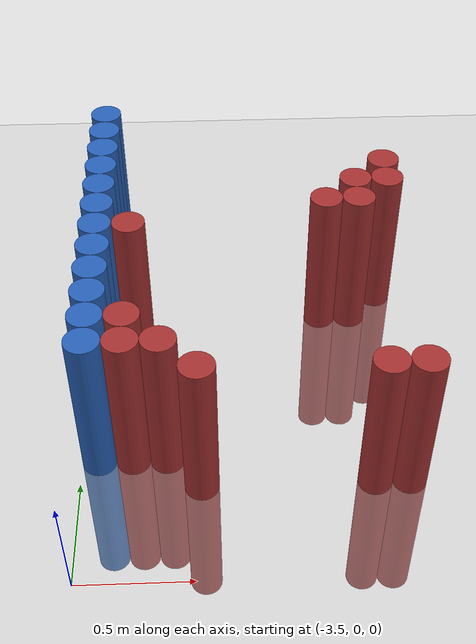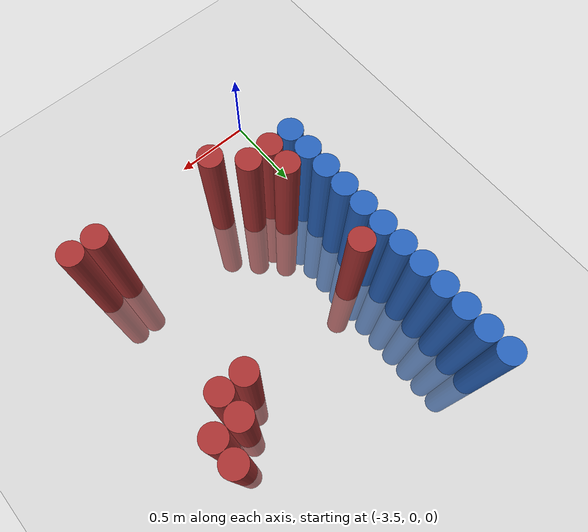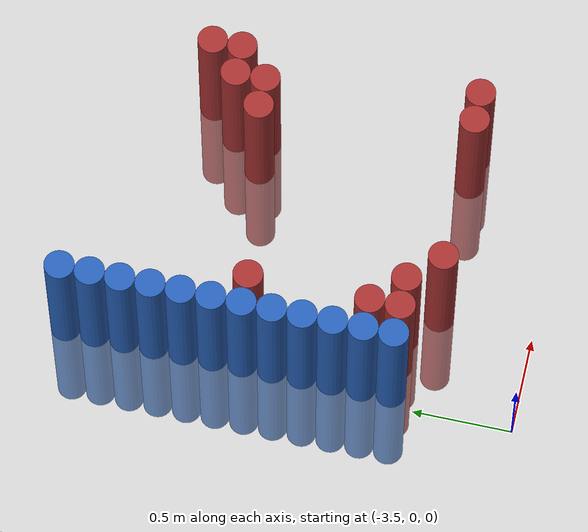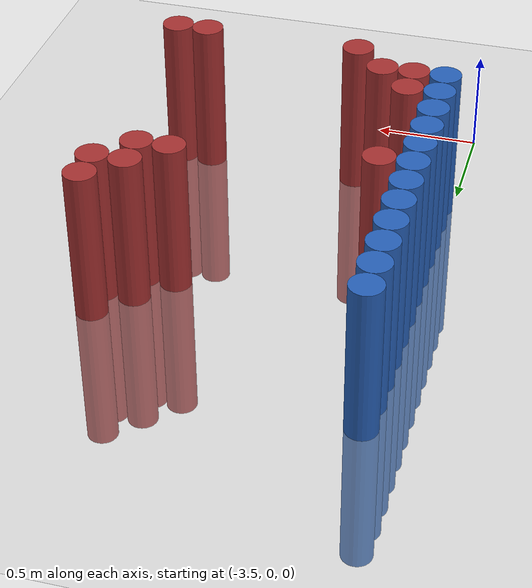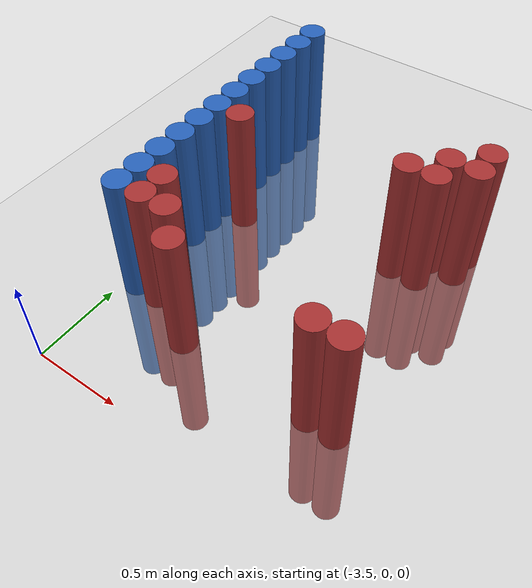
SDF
<sdf version="1.6">
 <world name="default">
  <model name="ground_plane">
   <static>1</static>
   <link name="link">
    <collision name="collision">
     <geometry><plane><normal>0 0 1</normal><size>100 100</size></plane></geometry>
     <surface><friction><ode><mu>100</mu><mu2>50</mu2></ode></friction></surface>
    </collision>
    <visual name="visual">
     <cast_shadows>0</cast_shadows>
     <geometry><plane><normal>0 0 1</normal><size>100 100</size></plane></geometry>
     <material>
      <script><uri>file://media/materials/scripts/gazebo.material</uri><name>Gazebo/Grey</name></script>
     </material>
    </visual>
   </link>
  </model>
  <model name="unit_cylinder_123">
   <static>1</static>
   <pose>-3.425000 0.625000 0.000000 0.000000 0.000000 0.000000</pose>
   <link name="link">
    <inertial>
     <mass>1</mass>
     <inertia><ixx>0.145833</ixx><ixy>0</ixy><ixz>0</ixz><iyy>0.145833</iyy><iyz>0</iyz><izz>0.125</izz></inertia>
    </inertial>
    <collision name="collision">
     <geometry><cylinder><radius>0.075000</radius><length>1.5</length></cylinder></geometry>
    </collision>
    <visual name="visual">
     <geometry><cylinder><radius>0.075000</radius><length>1.5</length></cylinder></geometry>
     <material>
      <ambient>0.152000 0.379000 0.720000 1</ambient>
      <diffuse>0.152000 0.379000 0.720000 1</diffuse>
     </material>
     <material>
      <script><name>Gazebo/Grey</name><uri>file://media/materials/scripts/gazebo.material</uri></script>
     </material>
    </visual>
   </link>
  </model>
  <model name="unit_cylinder_125">
   <static>1</static>
   <pose>-3.425000 0.775000 0.000000 0.000000 0.000000 0.000000</pose>
   <link name="link">
    <inertial>
     <mass>1</mass>
     <inertia><ixx>0.145833</ixx><ixy>0</ixy><ixz>0</ixz><iyy>0.145833</iyy><iyz>0</iyz><izz>0.125</izz></inertia>
    </inertial>
    <collision name="collision">
     <geometry><cylinder><radius>0.075000</radius><length>1.5</length></cylinder></geometry>
    </collision>
    <visual name="visual">
     <geometry><cylinder><radius>0.075000</radius><length>1.5</length></cylinder></geometry>
     <material>
      <ambient>0.152000 0.379000 0.720000 1</ambient>
      <diffuse>0.152000 0.379000 0.720000 1</diffuse>
     </material>
     <material>
      <script><name>Gazebo/Grey</name><uri>file://media/materials/scripts/gazebo.material</uri></script>
     </material>
    </visual>
   </link>
  </model>
  <model name="unit_cylinder_127">
   <static>1</static>
   <pose>-3.425000 0.925000 0.000000 0.000000 0.000000 0.000000</pose>
   <link name="link">
    <inertial>
     <mass>1</mass>
     <inertia><ixx>0.145833</ixx><ixy>0</ixy><ixz>0</ixz><iyy>0.145833</iyy><iyz>0</iyz><izz>0.125</izz></inertia>
    </inertial>
    <collision name="collision">
     <geometry><cylinder><radius>0.075000</radius><length>1.5</length></cylinder></geometry>
    </collision>
    <visual name="visual">
     <geometry><cylinder><radius>0.075000</radius><length>1.5</length></cylinder></geometry>
     <material>
      <ambient>0.152000 0.379000 0.720000 1</ambient>
      <diffuse>0.152000 0.379000 0.720000 1</diffuse>
     </material>
     <material>
      <script><name>Gazebo/Grey</name><uri>file://media/materials/scripts/gazebo.material</uri></script>
     </material>
    </visual>
   </link>
  </model>
  <model name="unit_cylinder_129">
   <static>1</static>
   <pose>-3.425000 1.075000 0.000000 0.000000 0.000000 0.000000</pose>
   <link name="link">
    <inertial>
     <mass>1</mass>
     <inertia><ixx>0.145833</ixx><ixy>0</ixy><ixz>0</ixz><iyy>0.145833</iyy><iyz>0</iyz><izz>0.125</izz></inertia>
    </inertial>
    <collision name="collision">
     <geometry><cylinder><radius>0.075000</radius><length>1.5</length></cylinder></geometry>
    </collision>
    <visual name="visual">
     <geometry><cylinder><radius>0.075000</radius><length>1.5</length></cylinder></geometry>
     <material>
      <ambient>0.152000 0.379000 0.720000 1</ambient>
      <diffuse>0.152000 0.379000 0.720000 1</diffuse>
     </material>
     <material>
      <script><name>Gazebo/Grey</name><uri>file://media/materials/scripts/gazebo.material</uri></script>
     </material>
    </visual>
   </link>
  </model>
  <model name="unit_cylinder_131">
   <static>1</static>
   <pose>-3.425000 1.225000 0.000000 0.000000 0.000000 0.000000</pose>
   <link name="link">
    <inertial>
     <mass>1</mass>
     <inertia><ixx>0.145833</ixx><ixy>0</ixy><ixz>0</ixz><iyy>0.145833</iyy><iyz>0</iyz><izz>0.125</izz></inertia>
    </inertial>
    <collision name="collision">
     <geometry><cylinder><radius>0.075000</radius><length>1.5</length></cylinder></geometry>
    </collision>
    <visual name="visual">
     <geometry><cylinder><radius>0.075000</radius><length>1.5</length></cylinder></geometry>
     <material>
      <ambient>0.152000 0.379000 0.720000 1</ambient>
      <diffuse>0.152000 0.379000 0.720000 1</diffuse>
     </material>
     <material>
      <script><name>Gazebo/Grey</name><uri>file://media/materials/scripts/gazebo.material</uri></script>
     </material>
    </visual>
   </link>
  </model>
  <model name="unit_cylinder_133">
   <static>1</static>
   <pose>-3.425000 1.375000 0.000000 0.000000 0.000000 0.000000</pose>
   <link name="link">
    <inertial>
     <mass>1</mass>
     <inertia><ixx>0.145833</ixx><ixy>0</ixy><ixz>0</ixz><iyy>0.145833</iyy><iyz>0</iyz><izz>0.125</izz></inertia>
    </inertial>
    <collision name="collision">
     <geometry><cylinder><radius>0.075000</radius><length>1.5</length></cylinder></geometry>
    </collision>
    <visual name="visual">
     <geometry><cylinder><radius>0.075000</radius><length>1.5</length></cylinder></geometry>
     <material>
      <ambient>0.152000 0.379000 0.720000 1</ambient>
      <diffuse>0.152000 0.379000 0.720000 1</diffuse>
     </material>
     <material>
      <script><name>Gazebo/Grey</name><uri>file://media/materials/scripts/gazebo.material</uri></script>
     </material>
    </visual>
   </link>
  </model>
  <model name="unit_cylinder_135">
   <static>1</static>
   <pose>-3.425000 1.525000 0.000000 0.000000 0.000000 0.000000</pose>
   <link name="link">
    <inertial>
     <mass>1</mass>
     <inertia><ixx>0.145833</ixx><ixy>0</ixy><ixz>0</ixz><iyy>0.145833</iyy><iyz>0</iyz><izz>0.125</izz></inertia>
    </inertial>
    <collision name="collision">
     <geometry><cylinder><radius>0.075000</radius><length>1.5</length></cylinder></geometry>
    </collision>
    <visual name="visual">
     <geometry><cylinder><radius>0.075000</radius><length>1.5</length></cylinder></geometry>
     <material>
      <ambient>0.152000 0.379000 0.720000 1</ambient>
      <diffuse>0.152000 0.379000 0.720000 1</diffuse>
     </material>
     <material>
      <script><name>Gazebo/Grey</name><uri>file://media/materials/scripts/gazebo.material</uri></script>
     </material>
    </visual>
   </link>
  </model>
  <model name="unit_cylinder_137">
   <static>1</static>
   <pose>-3.425000 1.675000 0.000000 0.000000 0.000000 0.000000</pose>
   <link name="link">
    <inertial>
     <mass>1</mass>
     <inertia><ixx>0.145833</ixx><ixy>0</ixy><ixz>0</ixz><iyy>0.145833</iyy><iyz>0</iyz><izz>0.125</izz></inertia>
    </inertial>
    <collision name="collision">
     <geometry><cylinder><radius>0.075000</radius><length>1.5</length></cylinder></geometry>
    </collision>
    <visual name="visual">
     <geometry><cylinder><radius>0.075000</radius><length>1.5</length></cylinder></geometry>
     <material>
      <ambient>0.152000 0.379000 0.720000 1</ambient>
      <diffuse>0.152000 0.379000 0.720000 1</diffuse>
     </material>
     <material>
      <script><name>Gazebo/Grey</name><uri>file://media/materials/scripts/gazebo.material</uri></script>
     </material>
    </visual>
   </link>
  </model>
  <model name="unit_cylinder_139">
   <static>1</static>
   <pose>-3.425000 1.825000 0.000000 0.000000 0.000000 0.000000</pose>
   <link name="link">
    <inertial>
     <mass>1</mass>
     <inertia><ixx>0.145833</ixx><ixy>0</ixy><ixz>0</ixz><iyy>0.145833</iyy><iyz>0</iyz><izz>0.125</izz></inertia>
    </inertial>
    <collision name="collision">
     <geometry><cylinder><radius>0.075000</radius><length>1.5</length></cylinder></geometry>
    </collision>
    <visual name="visual">
     <geometry><cylinder><radius>0.075000</radius><length>1.5</length></cylinder></geometry>
     <material>
      <ambient>0.152000 0.379000 0.720000 1</ambient>
      <diffuse>0.152000 0.379000 0.720000 1</diffuse>
     </material>
     <material>
      <script><name>Gazebo/Grey</name><uri>file://media/materials/scripts/gazebo.material</uri></script>
     </material>
    </visual>
   </link>
  </model>
  <model name="unit_cylinder_141">
   <static>1</static>
   <pose>-3.425000 1.975000 0.000000 0.000000 0.000000 0.000000</pose>
   <link name="link">
    <inertial>
     <mass>1</mass>
     <inertia><ixx>0.145833</ixx><ixy>0</ixy><ixz>0</ixz><iyy>0.145833</iyy><iyz>0</iyz><izz>0.125</izz></inertia>
    </inertial>
    <collision name="collision">
     <geometry><cylinder><radius>0.075000</radius><length>1.5</length></cylinder></geometry>
    </collision>
    <visual name="visual">
     <geometry><cylinder><radius>0.075000</radius><length>1.5</length></cylinder></geometry>
     <material>
      <ambient>0.152000 0.379000 0.720000 1</ambient>
      <diffuse>0.152000 0.379000 0.720000 1</diffuse>
     </material>
     <material>
      <script><name>Gazebo/Grey</name><uri>file://media/materials/scripts/gazebo.material</uri></script>
     </material>
    </visual>
   </link>
  </model>
  <model name="unit_cylinder_143">
   <static>1</static>
   <pose>-3.425000 2.125000 0.000000 0.000000 0.000000 0.000000</pose>
   <link name="link">
    <inertial>
     <mass>1</mass>
     <inertia><ixx>0.145833</ixx><ixy>0</ixy><ixz>0</ixz><iyy>0.145833</iyy><iyz>0</iyz><izz>0.125</izz></inertia>
    </inertial>
    <collision name="collision">
     <geometry><cylinder><radius>0.075000</radius><length>1.5</length></cylinder></geometry>
    </collision>
    <visual name="visual">
     <geometry><cylinder><radius>0.075000</radius><length>1.5</length></cylinder></geometry>
     <material>
      <ambient>0.152000 0.379000 0.720000 1</ambient>
      <diffuse>0.152000 0.379000 0.720000 1</diffuse>
     </material>
     <material>
      <script><name>Gazebo/Grey</name><uri>file://media/materials/scripts/gazebo.material</uri></script>
     </material>
    </visual>
   </link>
  </model>
  <model name="unit_cylinder_145">
   <static>1</static>
   <pose>-3.425000 2.275000 0.000000 0.000000 0.000000 0.000000</pose>
   <link name="link">
    <inertial>
     <mass>1</mass>
     <inertia><ixx>0.145833</ixx><ixy>0</ixy><ixz>0</ixz><iyy>0.145833</iyy><iyz>0</iyz><izz>0.125</izz></inertia>
    </inertial>
    <collision name="collision">
     <geometry><cylinder><radius>0.075000</radius><length>1.5</length></cylinder></geometry>
    </collision>
    <visual name="visual">
     <geometry><cylinder><radius>0.075000</radius><length>1.5</length></cylinder></geometry>
     <material>
      <ambient>0.152000 0.379000 0.720000 1</ambient>
      <diffuse>0.152000 0.379000 0.720000 1</diffuse>
     </material>
     <material>
      <script><name>Gazebo/Grey</name><uri>file://media/materials/scripts/gazebo.material</uri></script>
     </material>
    </visual>
   </link>
  </model>
  <model name="unit_cylinder_225">
   <static>1</static>
   <pose>-3.425000 0.625000 0.000000 0.000000 0.000000 0.000000</pose>
   <link name="link">
    <inertial>
     <mass>1</mass>
     <inertia><ixx>0.145833</ixx><ixy>0</ixy><ixz>0</ixz><iyy>0.145833</iyy><iyz>0</iyz><izz>0.125</izz></inertia>
    </inertial>
    <collision name="collision">
     <geometry><cylinder><radius>0.075000</radius><length>1.5</length></cylinder></geometry>
    </collision>
    <visual name="visual">
     <geometry><cylinder><radius>0.075000</radius><length>1.5</length></cylinder></geometry>
     <material>
      <ambient>0.152000 0.379000 0.720000 1</ambient>
      <diffuse>0.152000 0.379000 0.720000 1</diffuse>
     </material>
     <material>
      <script><name>Gazebo/Grey</name><uri>file://media/materials/scripts/gazebo.material</uri></script>
     </material>
    </visual>
   </link>
  </model>
  <model name="unit_cylinder_226">
   <static>1</static>
   <pose>-3.425000 0.775000 0.000000 0.000000 0.000000 0.000000</pose>
   <link name="link">
    <inertial>
     <mass>1</mass>
     <inertia><ixx>0.145833</ixx><ixy>0</ixy><ixz>0</ixz><iyy>0.145833</iyy><iyz>0</iyz><izz>0.125</izz></inertia>
    </inertial>
    <collision name="collision">
     <geometry><cylinder><radius>0.075000</radius><length>1.5</length></cylinder></geometry>
    </collision>
    <visual name="visual">
     <geometry><cylinder><radius>0.075000</radius><length>1.5</length></cylinder></geometry>
     <material>
      <ambient>0.152000 0.379000 0.720000 1</ambient>
      <diffuse>0.152000 0.379000 0.720000 1</diffuse>
     </material>
     <material>
      <script><name>Gazebo/Grey</name><uri>file://media/materials/scripts/gazebo.material</uri></script>
     </material>
    </visual>
   </link>
  </model>
  <model name="unit_cylinder_227">
   <static>1</static>
   <pose>-3.425000 0.925000 0.000000 0.000000 0.000000 0.000000</pose>
   <link name="link">
    <inertial>
     <mass>1</mass>
     <inertia><ixx>0.145833</ixx><ixy>0</ixy><ixz>0</ixz><iyy>0.145833</iyy><iyz>0</iyz><izz>0.125</izz></inertia>
    </inertial>
    <collision name="collision">
     <geometry><cylinder><radius>0.075000</radius><length>1.5</length></cylinder></geometry>
    </collision>
    <visual name="visual">
     <geometry><cylinder><radius>0.075000</radius><length>1.5</length></cylinder></geometry>
     <material>
      <ambient>0.152000 0.379000 0.720000 1</ambient>
      <diffuse>0.152000 0.379000 0.720000 1</diffuse>
     </material>
     <material>
      <script><name>Gazebo/Grey</name><uri>file://media/materials/scripts/gazebo.material</uri></script>
     </material>
    </visual>
   </link>
  </model>
  <model name="unit_cylinder_228">
   <static>1</static>
   <pose>-3.425000 1.075000 0.000000 0.000000 0.000000 0.000000</pose>
   <link name="link">
    <inertial>
     <mass>1</mass>
     <inertia><ixx>0.145833</ixx><ixy>0</ixy><ixz>0</ixz><iyy>0.145833</iyy><iyz>0</iyz><izz>0.125</izz></inertia>
    </inertial>
    <collision name="collision">
     <geometry><cylinder><radius>0.075000</radius><length>1.5</length></cylinder></geometry>
    </collision>
    <visual name="visual">
     <geometry><cylinder><radius>0.075000</radius><length>1.5</length></cylinder></geometry>
     <material>
      <ambient>0.152000 0.379000 0.720000 1</ambient>
      <diffuse>0.152000 0.379000 0.720000 1</diffuse>
     </material>
     <material>
      <script><name>Gazebo/Grey</name><uri>file://media/materials/scripts/gazebo.material</uri></script>
     </material>
    </visual>
   </link>
  </model>
  <model name="unit_cylinder_229">
   <static>1</static>
   <pose>-3.425000 1.225000 0.000000 0.000000 0.000000 0.000000</pose>
   <link name="link">
    <inertial>
     <mass>1</mass>
     <inertia><ixx>0.145833</ixx><ixy>0</ixy><ixz>0</ixz><iyy>0.145833</iyy><iyz>0</iyz><izz>0.125</izz></inertia>
    </inertial>
    <collision name="collision">
     <geometry><cylinder><radius>0.075000</radius><length>1.5</length></cylinder></geometry>
    </collision>
    <visual name="visual">
     <geometry><cylinder><radius>0.075000</radius><length>1.5</length></cylinder></geometry>
     <material>
      <ambient>0.152000 0.379000 0.720000 1</ambient>
      <diffuse>0.152000 0.379000 0.720000 1</diffuse>
     </material>
     <material>
      <script><name>Gazebo/Grey</name><uri>file://media/materials/scripts/gazebo.material</uri></script>
     </material>
    </visual>
   </link>
  </model>
  <model name="unit_cylinder_230">
   <static>1</static>
   <pose>-3.425000 1.375000 0.000000 0.000000 0.000000 0.000000</pose>
   <link name="link">
    <inertial>
     <mass>1</mass>
     <inertia><ixx>0.145833</ixx><ixy>0</ixy><ixz>0</ixz><iyy>0.145833</iyy><iyz>0</iyz><izz>0.125</izz></inertia>
    </inertial>
    <collision name="collision">
     <geometry><cylinder><radius>0.075000</radius><length>1.5</length></cylinder></geometry>
    </collision>
    <visual name="visual">
     <geometry><cylinder><radius>0.075000</radius><length>1.5</length></cylinder></geometry>
     <material>
      <ambient>0.152000 0.379000 0.720000 1</ambient>
      <diffuse>0.152000 0.379000 0.720000 1</diffuse>
     </material>
     <material>
      <script><name>Gazebo/Grey</name><uri>file://media/materials/scripts/gazebo.material</uri></script>
     </material>
    </visual>
   </link>
  </model>
  <model name="unit_cylinder_231">
   <static>1</static>
   <pose>-3.425000 1.525000 0.000000 0.000000 0.000000 0.000000</pose>
   <link name="link">
    <inertial>
     <mass>1</mass>
     <inertia><ixx>0.145833</ixx><ixy>0</ixy><ixz>0</ixz><iyy>0.145833</iyy><iyz>0</iyz><izz>0.125</izz></inertia>
    </inertial>
    <collision name="collision">
     <geometry><cylinder><radius>0.075000</radius><length>1.5</length></cylinder></geometry>
    </collision>
    <visual name="visual">
     <geometry><cylinder><radius>0.075000</radius><length>1.5</length></cylinder></geometry>
     <material>
      <ambient>0.152000 0.379000 0.720000 1</ambient>
      <diffuse>0.152000 0.379000 0.720000 1</diffuse>
     </material>
     <material>
      <script><name>Gazebo/Grey</name><uri>file://media/materials/scripts/gazebo.material</uri></script>
     </material>
    </visual>
   </link>
  </model>
  <model name="unit_cylinder_232">
   <static>1</static>
   <pose>-3.425000 1.675000 0.000000 0.000000 0.000000 0.000000</pose>
   <link name="link">
    <inertial>
     <mass>1</mass>
     <inertia><ixx>0.145833</ixx><ixy>0</ixy><ixz>0</ixz><iyy>0.145833</iyy><iyz>0</iyz><izz>0.125</izz></inertia>
    </inertial>
    <collision name="collision">
     <geometry><cylinder><radius>0.075000</radius><length>1.5</length></cylinder></geometry>
    </collision>
    <visual name="visual">
     <geometry><cylinder><radius>0.075000</radius><length>1.5</length></cylinder></geometry>
     <material>
      <ambient>0.152000 0.379000 0.720000 1</ambient>
      <diffuse>0.152000 0.379000 0.720000 1</diffuse>
     </material>
     <material>
      <script><name>Gazebo/Grey</name><uri>file://media/materials/scripts/gazebo.material</uri></script>
     </material>
    </visual>
   </link>
  </model>
  <model name="unit_cylinder_233">
   <static>1</static>
   <pose>-3.425000 1.825000 0.000000 0.000000 0.000000 0.000000</pose>
   <link name="link">
    <inertial>
     <mass>1</mass>
     <inertia><ixx>0.145833</ixx><ixy>0</ixy><ixz>0</ixz><iyy>0.145833</iyy><iyz>0</iyz><izz>0.125</izz></inertia>
    </inertial>
    <collision name="collision">
     <geometry><cylinder><radius>0.075000</radius><length>1.5</length></cylinder></geometry>
    </collision>
    <visual name="visual">
     <geometry><cylinder><radius>0.075000</radius><length>1.5</length></cylinder></geometry>
     <material>
      <ambient>0.152000 0.379000 0.720000 1</ambient>
      <diffuse>0.152000 0.379000 0.720000 1</diffuse>
     </material>
     <material>
      <script><name>Gazebo/Grey</name><uri>file://media/materials/scripts/gazebo.material</uri></script>
     </material>
    </visual>
   </link>
  </model>
  <model name="unit_cylinder_234">
   <static>1</static>
   <pose>-3.425000 1.975000 0.000000 0.000000 0.000000 0.000000</pose>
   <link name="link">
    <inertial>
     <mass>1</mass>
     <inertia><ixx>0.145833</ixx><ixy>0</ixy><ixz>0</ixz><iyy>0.145833</iyy><iyz>0</iyz><izz>0.125</izz></inertia>
    </inertial>
    <collision name="collision">
     <geometry><cylinder><radius>0.075000</radius><length>1.5</length></cylinder></geometry>
    </collision>
    <visual name="visual">
     <geometry><cylinder><radius>0.075000</radius><length>1.5</length></cylinder></geometry>
     <material>
      <ambient>0.152000 0.379000 0.720000 1</ambient>
      <diffuse>0.152000 0.379000 0.720000 1</diffuse>
     </material>
     <material>
      <script><name>Gazebo/Grey</name><uri>file://media/materials/scripts/gazebo.material</uri></script>
     </material>
    </visual>
   </link>
  </model>
  <model name="unit_cylinder_235">
   <static>1</static>
   <pose>-3.425000 2.125000 0.000000 0.000000 0.000000 0.000000</pose>
   <link name="link">
    <inertial>
     <mass>1</mass>
     <inertia><ixx>0.145833</ixx><ixy>0</ixy><ixz>0</ixz><iyy>0.145833</iyy><iyz>0</iyz><izz>0.125</izz></inertia>
    </inertial>
    <collision name="collision">
     <geometry><cylinder><radius>0.075000</radius><length>1.5</length></cylinder></geometry>
    </collision>
    <visual name="visual">
     <geometry><cylinder><radius>0.075000</radius><length>1.5</length></cylinder></geometry>
     <material>
      <ambient>0.152000 0.379000 0.720000 1</ambient>
      <diffuse>0.152000 0.379000 0.720000 1</diffuse>
     </material>
     <material>
      <script><name>Gazebo/Grey</name><uri>file://media/materials/scripts/gazebo.material</uri></script>
     </material>
    </visual>
   </link>
  </model>
  <model name="unit_cylinder_236">
   <static>1</static>
   <pose>-3.425000 2.275000 0.000000 0.000000 0.000000 0.000000</pose>
   <link name="link">
    <inertial>
     <mass>1</mass>
     <inertia><ixx>0.145833</ixx><ixy>0</ixy><ixz>0</ixz><iyy>0.145833</iyy><iyz>0</iyz><izz>0.125</izz></inertia>
    </inertial>
    <collision name="collision">
     <geometry><cylinder><radius>0.075000</radius><length>1.5</length></cylinder></geometry>
    </collision>
    <visual name="visual">
     <geometry><cylinder><radius>0.075000</radius><length>1.5</length></cylinder></geometry>
     <material>
      <ambient>0.152000 0.379000 0.720000 1</ambient>
      <diffuse>0.152000 0.379000 0.720000 1</diffuse>
     </material>
     <material>
      <script><name>Gazebo/Grey</name><uri>file://media/materials/scripts/gazebo.material</uri></script>
     </material>
    </visual>
   </link>
  </model>
  <model name="unit_cylinder_267">
   <static>1</static>
   <pose>-3.275000 0.625000 0.000000 0.000000 0.000000 0.000000</pose>
   <link name="link">
    <inertial>
     <mass>1</mass>
     <inertia><ixx>0.145833</ixx><ixy>0</ixy><ixz>0</ixz><iyy>0.145833</iyy><iyz>0</iyz><izz>0.125</izz></inertia>
    </inertial>
    <collision name="collision">
     <geometry><cylinder><radius>0.075000</radius><length>1.5</length></cylinder></geometry>
    </collision>
    <visual name="visual">
     <geometry><cylinder><radius>0.075000</radius><length>1.5</length></cylinder></geometry>
     <material>
      <ambient>0.648000 0.192000 0.192000 1</ambient>
      <diffuse>0.648000 0.192000 0.192000 1</diffuse>
     </material>
     <material>
      <script><name>Gazebo/Grey</name><uri>file://media/materials/scripts/gazebo.material</uri></script>
     </material>
    </visual>
   </link>
  </model>
  <model name="unit_cylinder_268">
   <static>1</static>
   <pose>-3.275000 0.775000 0.000000 0.000000 0.000000 0.000000</pose>
   <link name="link">
    <inertial>
     <mass>1</mass>
     <inertia><ixx>0.145833</ixx><ixy>0</ixy><ixz>0</ixz><iyy>0.145833</iyy><iyz>0</iyz><izz>0.125</izz></inertia>
    </inertial>
    <collision name="collision">
     <geometry><cylinder><radius>0.075000</radius><length>1.5</length></cylinder></geometry>
    </collision>
    <visual name="visual">
     <geometry><cylinder><radius>0.075000</radius><length>1.5</length></cylinder></geometry>
     <material>
      <ambient>0.648000 0.192000 0.192000 1</ambient>
      <diffuse>0.648000 0.192000 0.192000 1</diffuse>
     </material>
     <material>
      <script><name>Gazebo/Grey</name><uri>file://media/materials/scripts/gazebo.material</uri></script>
     </material>
    </visual>
   </link>
  </model>
  <model name="unit_cylinder_269">
   <static>1</static>
   <pose>-3.275000 1.375000 0.000000 0.000000 0.000000 0.000000</pose>
   <link name="link">
    <inertial>
     <mass>1</mass>
     <inertia><ixx>0.145833</ixx><ixy>0</ixy><ixz>0</ixz><iyy>0.145833</iyy><iyz>0</iyz><izz>0.125</izz></inertia>
    </inertial>
    <collision name="collision">
     <geometry><cylinder><radius>0.075000</radius><length>1.5</length></cylinder></geometry>
    </collision>
    <visual name="visual">
     <geometry><cylinder><radius>0.075000</radius><length>1.5</length></cylinder></geometry>
     <material>
      <ambient>0.648000 0.192000 0.192000 1</ambient>
      <diffuse>0.648000 0.192000 0.192000 1</diffuse>
     </material>
     <material>
      <script><name>Gazebo/Grey</name><uri>file://media/materials/scripts/gazebo.material</uri></script>
     </material>
    </visual>
   </link>
  </model>
  <model name="unit_cylinder_281">
   <static>1</static>
   <pose>-3.125000 0.625000 0.000000 0.000000 0.000000 0.000000</pose>
   <link name="link">
    <inertial>
     <mass>1</mass>
     <inertia><ixx>0.145833</ixx><ixy>0</ixy><ixz>0</ixz><iyy>0.145833</iyy><iyz>0</iyz><izz>0.125</izz></inertia>
    </inertial>
    <collision name="collision">
     <geometry><cylinder><radius>0.075000</radius><length>1.5</length></cylinder></geometry>
    </collision>
    <visual name="visual">
     <geometry><cylinder><radius>0.075000</radius><length>1.5</length></cylinder></geometry>
     <material>
      <ambient>0.648000 0.192000 0.192000 1</ambient>
      <diffuse>0.648000 0.192000 0.192000 1</diffuse>
     </material>
     <material>
      <script><name>Gazebo/Grey</name><uri>file://media/materials/scripts/gazebo.material</uri></script>
     </material>
    </visual>
   </link>
  </model>
  <model name="unit_cylinder_284">
   <static>1</static>
   <pose>-2.975000 0.475000 0.000000 0.000000 0.000000 0.000000</pose>
   <link name="link">
    <inertial>
     <mass>1</mass>
     <inertia><ixx>0.145833</ixx><ixy>0</ixy><ixz>0</ixz><iyy>0.145833</iyy><iyz>0</iyz><izz>0.125</izz></inertia>
    </inertial>
    <collision name="collision">
     <geometry><cylinder><radius>0.075000</radius><length>1.5</length></cylinder></geometry>
    </collision>
    <visual name="visual">
     <geometry><cylinder><radius>0.075000</radius><length>1.5</length></cylinder></geometry>
     <material>
      <ambient>0.648000 0.192000 0.192000 1</ambient>
      <diffuse>0.648000 0.192000 0.192000 1</diffuse>
     </material>
     <material>
      <script><name>Gazebo/Grey</name><uri>file://media/materials/scripts/gazebo.material</uri></script>
     </material>
    </visual>
   </link>
  </model>
  <model name="unit_cylinder_285">
   <static>1</static>
   <pose>-2.375000 1.525000 0.000000 0.000000 0.000000 0.000000</pose>
   <link name="link">
    <inertial>
     <mass>1</mass>
     <inertia><ixx>0.145833</ixx><ixy>0</ixy><ixz>0</ixz><iyy>0.145833</iyy><iyz>0</iyz><izz>0.125</izz></inertia>
    </inertial>
    <collision name="collision">
     <geometry><cylinder><radius>0.075000</radius><length>1.5</length></cylinder></geometry>
    </collision>
    <visual name="visual">
     <geometry><cylinder><radius>0.075000</radius><length>1.5</length></cylinder></geometry>
     <material>
      <ambient>0.648000 0.192000 0.192000 1</ambient>
      <diffuse>0.648000 0.192000 0.192000 1</diffuse>
     </material>
     <material>
      <script><name>Gazebo/Grey</name><uri>file://media/materials/scripts/gazebo.material</uri></script>
     </material>
    </visual>
   </link>
  </model>
  <model name="unit_cylinder_287">
   <static>1</static>
   <pose>-2.225000 0.475000 0.000000 0.000000 0.000000 0.000000</pose>
   <link name="link">
    <inertial>
     <mass>1</mass>
     <inertia><ixx>0.145833</ixx><ixy>0</ixy><ixz>0</ixz><iyy>0.145833</iyy><iyz>0</iyz><izz>0.125</izz></inertia>
    </inertial>
    <collision name="collision">
     <geometry><cylinder><radius>0.075000</radius><length>1.5</length></cylinder></geometry>
    </collision>
    <visual name="visual">
     <geometry><cylinder><radius>0.075000</radius><length>1.5</length></cylinder></geometry>
     <material>
      <ambient>0.648000 0.192000 0.192000 1</ambient>
      <diffuse>0.648000 0.192000 0.192000 1</diffuse>
     </material>
     <material>
      <script><name>Gazebo/Grey</name><uri>file://media/materials/scripts/gazebo.material</uri></script>
     </material>
    </visual>
   </link>
  </model>
  <model name="unit_cylinder_288">
   <static>1</static>
   <pose>-2.225000 1.525000 0.000000 0.000000 0.000000 0.000000</pose>
   <link name="link">
    <inertial>
     <mass>1</mass>
     <inertia><ixx>0.145833</ixx><ixy>0</ixy><ixz>0</ixz><iyy>0.145833</iyy><iyz>0</iyz><izz>0.125</izz></inertia>
    </inertial>
    <collision name="collision">
     <geometry><cylinder><radius>0.075000</radius><length>1.5</length></cylinder></geometry>
    </collision>
    <visual name="visual">
     <geometry><cylinder><radius>0.075000</radius><length>1.5</length></cylinder></geometry>
     <material>
      <ambient>0.648000 0.192000 0.192000 1</ambient>
      <diffuse>0.648000 0.192000 0.192000 1</diffuse>
     </material>
     <material>
      <script><name>Gazebo/Grey</name><uri>file://media/materials/scripts/gazebo.material</uri></script>
     </material>
    </visual>
   </link>
  </model>
  <model name="unit_cylinder_289">
   <static>1</static>
   <pose>-2.225000 1.675000 0.000000 0.000000 0.000000 0.000000</pose>
   <link name="link">
    <inertial>
     <mass>1</mass>
     <inertia><ixx>0.145833</ixx><ixy>0</ixy><ixz>0</ixz><iyy>0.145833</iyy><iyz>0</iyz><izz>0.125</izz></inertia>
    </inertial>
    <collision name="collision">
     <geometry><cylinder><radius>0.075000</radius><length>1.5</length></cylinder></geometry>
    </collision>
    <visual name="visual">
     <geometry><cylinder><radius>0.075000</radius><length>1.5</length></cylinder></geometry>
     <material>
      <ambient>0.648000 0.192000 0.192000 1</ambient>
      <diffuse>0.648000 0.192000 0.192000 1</diffuse>
     </material>
     <material>
      <script><name>Gazebo/Grey</name><uri>file://media/materials/scripts/gazebo.material</uri></script>
     </material>
    </visual>
   </link>
  </model>
  <model name="unit_cylinder_292">
   <static>1</static>
   <pose>-2.075000 0.475000 0.000000 0.000000 0.000000 0.000000</pose>
   <link name="link">
    <inertial>
     <mass>1</mass>
     <inertia><ixx>0.145833</ixx><ixy>0</ixy><ixz>0</ixz><iyy>0.145833</iyy><iyz>0</iyz><izz>0.125</izz></inertia>
    </inertial>
    <collision name="collision">
     <geometry><cylinder><radius>0.075000</radius><length>1.5</length></cylinder></geometry>
    </collision>
    <visual name="visual">
     <geometry><cylinder><radius>0.075000</radius><length>1.5</length></cylinder></geometry>
     <material>
      <ambient>0.648000 0.192000 0.192000 1</ambient>
      <diffuse>0.648000 0.192000 0.192000 1</diffuse>
     </material>
     <material>
      <script><name>Gazebo/Grey</name><uri>file://media/materials/scripts/gazebo.material</uri></script>
     </material>
    </visual>
   </link>
  </model>
  <model name="unit_cylinder_293">
   <static>1</static>
   <pose>-2.075000 1.675000 0.000000 0.000000 0.000000 0.000000</pose>
   <link name="link">
    <inertial>
     <mass>1</mass>
     <inertia><ixx>0.145833</ixx><ixy>0</ixy><ixz>0</ixz><iyy>0.145833</iyy><iyz>0</iyz><izz>0.125</izz></inertia>
    </inertial>
    <collision name="collision">
     <geometry><cylinder><radius>0.075000</radius><length>1.5</length></cylinder></geometry>
    </collision>
    <visual name="visual">
     <geometry><cylinder><radius>0.075000</radius><length>1.5</length></cylinder></geometry>
     <material>
      <ambient>0.648000 0.192000 0.192000 1</ambient>
      <diffuse>0.648000 0.192000 0.192000 1</diffuse>
     </material>
     <material>
      <script><name>Gazebo/Grey</name><uri>file://media/materials/scripts/gazebo.material</uri></script>
     </material>
    </visual>
   </link>
  </model>
  <model name="unit_cylinder_294">
   <static>1</static>
   <pose>-2.075000 1.825000 0.000000 0.000000 0.000000 0.000000</pose>
   <link name="link">
    <inertial>
     <mass>1</mass>
     <inertia><ixx>0.145833</ixx><ixy>0</ixy><ixz>0</ixz><iyy>0.145833</iyy><iyz>0</iyz><izz>0.125</izz></inertia>
    </inertial>
    <collision name="collision">
     <geometry><cylinder><radius>0.075000</radius><length>1.5</length></cylinder></geometry>
    </collision>
    <visual name="visual">
     <geometry><cylinder><radius>0.075000</radius><length>1.5</length></cylinder></geometry>
     <material>
      <ambient>0.648000 0.192000 0.192000 1</ambient>
      <diffuse>0.648000 0.192000 0.192000 1</diffuse>
     </material>
     <material>
      <script><name>Gazebo/Grey</name><uri>file://media/materials/scripts/gazebo.material</uri></script>
     </material>
    </visual>
   </link>
  </model>
 </world>
</sdf>
